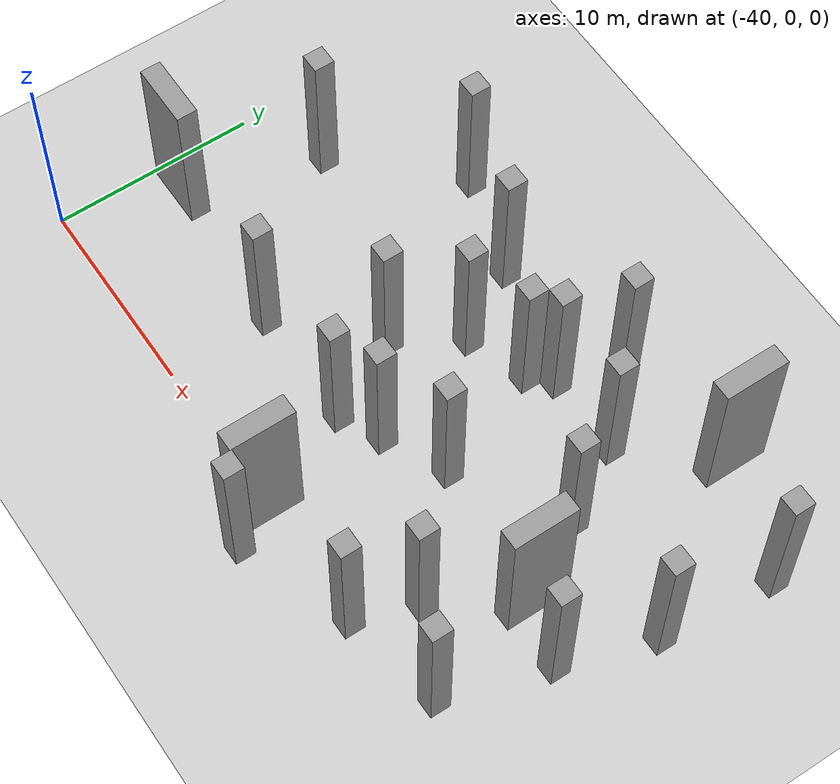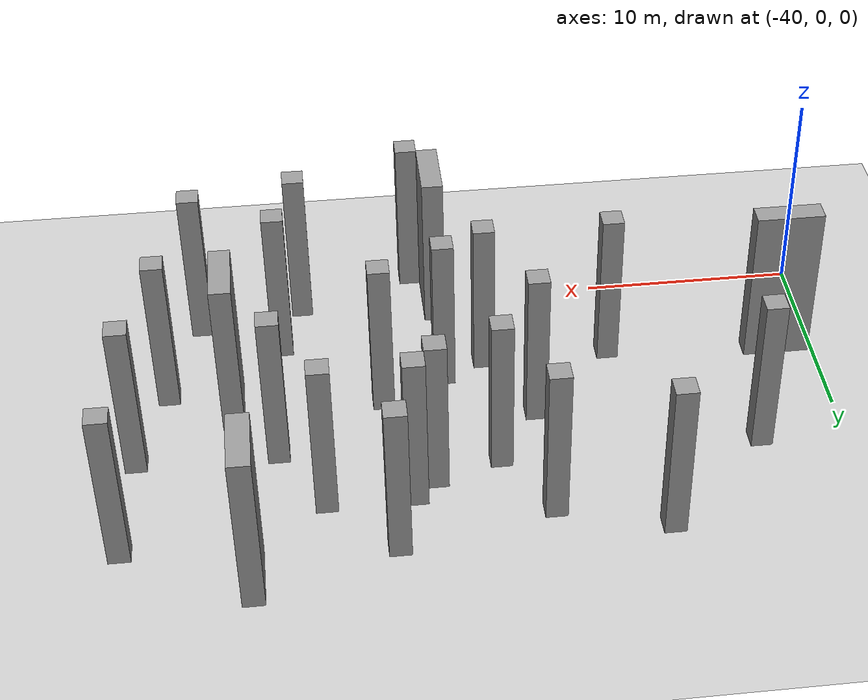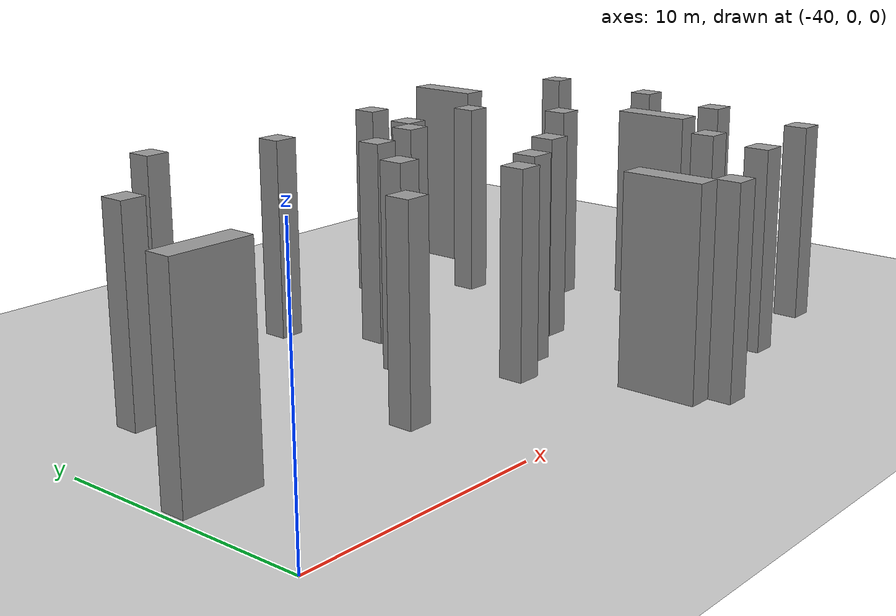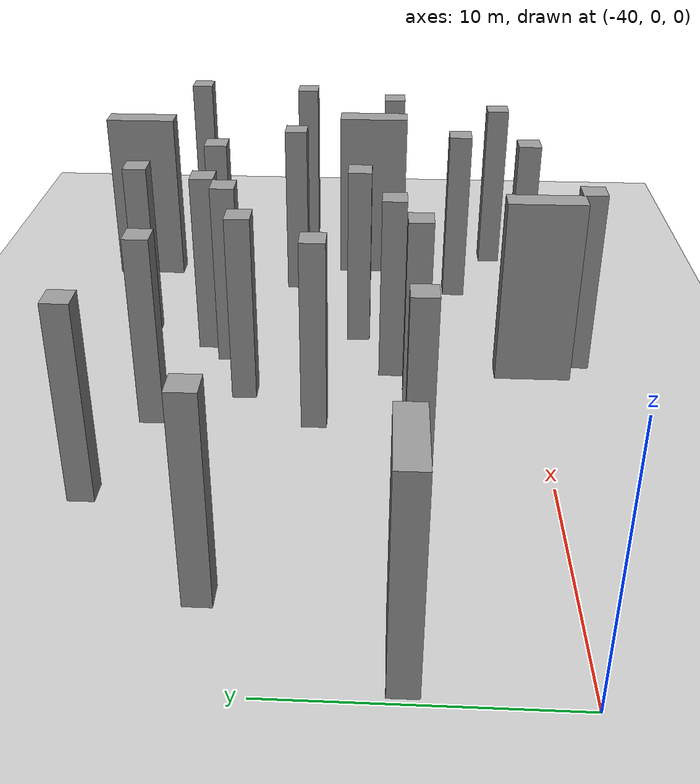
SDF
<sdf version="1.7">
 <world name="default">
  <model name="ground_plane">
   <static>1</static>
   <link name="link">
    <collision name="collision">
     <geometry><plane><normal>0 0 1</normal><size>100 100</size></plane></geometry>
     <surface>
      <contact><collide_bitmask>65535</collide_bitmask></contact>
      <friction><ode><mu>100</mu><mu2>50</mu2></ode></friction>
     </surface>
    </collision>
    <visual name="visual">
     <cast_shadows>0</cast_shadows>
     <geometry><plane><normal>0 0 1</normal><size>100 100</size></plane></geometry>
     <material>
      <script><uri>file://media/materials/scripts/gazebo.material</uri><name>Gazebo/Grey</name></script>
     </material>
    </visual>
   </link>
  </model>
  <model name="unit_box_static_clone_1">
   <link name="link">
    <inertial>
     <mass>1</mass>
     <inertia>
      <ixx>0.166667</ixx>
      <ixy>0</ixy>
      <ixz>0</ixz>
      <iyy>0.166667</iyy>
      <iyz>0</iyz>
      <izz>0.166667</izz>
     </inertia>
    </inertial>
    <visual name="visual">
     <geometry><box><size>1 1 8.00001</size></box></geometry>
     <material>
      <script><name>Gazebo/Grey</name><uri>file://media/materials/scripts/gazebo.material</uri></script>
      <shader type="pixel"/>
     </material>
    </visual>
    <collision name="collision">
     <geometry><box><size>1 1 8.00001</size></box></geometry>
     <surface>
      <friction>
       <ode><mu>1</mu><mu2>1</mu2><fdir1>0 0 0</fdir1><slip1>0</slip1><slip2>0</slip2></ode>
       <torsional>
        <coefficient>1</coefficient>
        <patch_radius>0</patch_radius>
        <surface_radius>0</surface_radius>
        <use_patch_radius>1</use_patch_radius>
        <ode><slip>0</slip></ode>
       </torsional>
      </friction>
      <bounce><restitution_coefficient>0</restitution_coefficient><threshold>1e+06</threshold></bounce>
      <contact>
       <collide_without_contact>0</collide_without_contact>
       <collide_without_contact_bitmask>1</collide_without_contact_bitmask>
       <collide_bitmask>1</collide_bitmask>
       <ode>
        <soft_cfm>0</soft_cfm>
        <soft_erp>0.2</soft_erp>
        <kp>1e+13</kp>
        <kd>1</kd>
        <max_vel>0.01</max_vel>
        <min_depth>0</min_depth>
       </ode>
       <bullet>
        <split_impulse>1</split_impulse>
        <split_impulse_penetration_threshold>-0.01</split_impulse_penetration_threshold>
        <soft_cfm>0</soft_cfm>
        <soft_erp>0.2</soft_erp>
        <kp>1e+13</kp>
        <kd>1</kd>
       </bullet>
      </contact>
     </surface>
    </collision>
   </link>
   <static>1</static>
   <pose>-19 17 4 0 -0 0</pose>
  </model>
  <model name="unit_box_static_clone_3">
   <link name="link">
    <inertial>
     <mass>1</mass>
     <inertia>
      <ixx>0.166667</ixx>
      <ixy>0</ixy>
      <ixz>0</ixz>
      <iyy>0.166667</iyy>
      <iyz>0</iyz>
      <izz>0.166667</izz>
     </inertia>
    </inertial>
    <visual name="visual">
     <geometry><box><size>1 1 8.00001</size></box></geometry>
     <material>
      <script><name>Gazebo/Grey</name><uri>file://media/materials/scripts/gazebo.material</uri></script>
      <shader type="pixel"/>
     </material>
    </visual>
    <collision name="collision">
     <geometry><box><size>1 1 8.00001</size></box></geometry>
     <surface>
      <friction>
       <ode><mu>1</mu><mu2>1</mu2><fdir1>0 0 0</fdir1><slip1>0</slip1><slip2>0</slip2></ode>
       <torsional>
        <coefficient>1</coefficient>
        <patch_radius>0</patch_radius>
        <surface_radius>0</surface_radius>
        <use_patch_radius>1</use_patch_radius>
        <ode><slip>0</slip></ode>
       </torsional>
      </friction>
      <bounce><restitution_coefficient>0</restitution_coefficient><threshold>1e+06</threshold></bounce>
      <contact>
       <collide_without_contact>0</collide_without_contact>
       <collide_without_contact_bitmask>1</collide_without_contact_bitmask>
       <collide_bitmask>1</collide_bitmask>
       <ode>
        <soft_cfm>0</soft_cfm>
        <soft_erp>0.2</soft_erp>
        <kp>1e+13</kp>
        <kd>1</kd>
        <max_vel>0.01</max_vel>
        <min_depth>0</min_depth>
       </ode>
       <bullet>
        <split_impulse>1</split_impulse>
        <split_impulse_penetration_threshold>-0.01</split_impulse_penetration_threshold>
        <soft_cfm>0</soft_cfm>
        <soft_erp>0.2</soft_erp>
        <kp>1e+13</kp>
        <kd>1</kd>
       </bullet>
      </contact>
     </surface>
    </collision>
   </link>
   <static>1</static>
   <pose>-20 14 4 0 -0 0</pose>
  </model>
  <model name="unit_box_static_clone_4">
   <link name="link">
    <inertial>
     <mass>1</mass>
     <inertia>
      <ixx>0.166667</ixx>
      <ixy>0</ixy>
      <ixz>0</ixz>
      <iyy>0.166667</iyy>
      <iyz>0</iyz>
      <izz>0.166667</izz>
     </inertia>
    </inertial>
    <visual name="visual">
     <geometry><box><size>1 1 8.00001</size></box></geometry>
     <material>
      <script><name>Gazebo/Grey</name><uri>file://media/materials/scripts/gazebo.material</uri></script>
      <shader type="pixel"/>
     </material>
    </visual>
    <collision name="collision">
     <geometry><box><size>1 1 8.00001</size></box></geometry>
     <surface>
      <friction>
       <ode><mu>1</mu><mu2>1</mu2><fdir1>0 0 0</fdir1><slip1>0</slip1><slip2>0</slip2></ode>
       <torsional>
        <coefficient>1</coefficient>
        <patch_radius>0</patch_radius>
        <surface_radius>0</surface_radius>
        <use_patch_radius>1</use_patch_radius>
        <ode><slip>0</slip></ode>
       </torsional>
      </friction>
      <bounce><restitution_coefficient>0</restitution_coefficient><threshold>1e+06</threshold></bounce>
      <contact>
       <collide_without_contact>0</collide_without_contact>
       <collide_without_contact_bitmask>1</collide_without_contact_bitmask>
       <collide_bitmask>1</collide_bitmask>
       <ode>
        <soft_cfm>0</soft_cfm>
        <soft_erp>0.2</soft_erp>
        <kp>1e+13</kp>
        <kd>1</kd>
        <max_vel>0.01</max_vel>
        <min_depth>0</min_depth>
       </ode>
       <bullet>
        <split_impulse>1</split_impulse>
        <split_impulse_penetration_threshold>-0.01</split_impulse_penetration_threshold>
        <soft_cfm>0</soft_cfm>
        <soft_erp>0.2</soft_erp>
        <kp>1e+13</kp>
        <kd>1</kd>
       </bullet>
      </contact>
     </surface>
    </collision>
   </link>
   <static>1</static>
   <pose>-14 10.5646 4 0 -0 0</pose>
  </model>
  <model name="unit_box_static_clone_5">
   <link name="link">
    <inertial>
     <mass>1</mass>
     <inertia>
      <ixx>0.166667</ixx>
      <ixy>0</ixy>
      <ixz>0</ixz>
      <iyy>0.166667</iyy>
      <iyz>0</iyz>
      <izz>0.166667</izz>
     </inertia>
    </inertial>
    <visual name="visual">
     <geometry><box><size>1 1 8.00001</size></box></geometry>
     <material>
      <script><name>Gazebo/Grey</name><uri>file://media/materials/scripts/gazebo.material</uri></script>
      <shader type="pixel"/>
     </material>
    </visual>
    <collision name="collision">
     <geometry><box><size>1 1 8.00001</size></box></geometry>
     <surface>
      <friction>
       <ode><mu>1</mu><mu2>1</mu2><fdir1>0 0 0</fdir1><slip1>0</slip1><slip2>0</slip2></ode>
       <torsional>
        <coefficient>1</coefficient>
        <patch_radius>0</patch_radius>
        <surface_radius>0</surface_radius>
        <use_patch_radius>1</use_patch_radius>
        <ode><slip>0</slip></ode>
       </torsional>
      </friction>
      <bounce><restitution_coefficient>0</restitution_coefficient><threshold>1e+06</threshold></bounce>
      <contact>
       <collide_without_contact>0</collide_without_contact>
       <collide_without_contact_bitmask>1</collide_without_contact_bitmask>
       <collide_bitmask>1</collide_bitmask>
       <ode>
        <soft_cfm>0</soft_cfm>
        <soft_erp>0.2</soft_erp>
        <kp>1e+13</kp>
        <kd>1</kd>
        <max_vel>0.01</max_vel>
        <min_depth>0</min_depth>
       </ode>
       <bullet>
        <split_impulse>1</split_impulse>
        <split_impulse_penetration_threshold>-0.01</split_impulse_penetration_threshold>
        <soft_cfm>0</soft_cfm>
        <soft_erp>0.2</soft_erp>
        <kp>1e+13</kp>
        <kd>1</kd>
       </bullet>
      </contact>
     </surface>
    </collision>
   </link>
   <static>1</static>
   <pose>-7.56601 10.4516 4 0 -0 0</pose>
  </model>
  <model name="unit_box_static_clone_7">
   <link name="link">
    <inertial>
     <mass>1</mass>
     <inertia>
      <ixx>0.166667</ixx>
      <ixy>0</ixy>
      <ixz>0</ixz>
      <iyy>0.166667</iyy>
      <iyz>0</iyz>
      <izz>0.166667</izz>
     </inertia>
    </inertial>
    <visual name="visual">
     <geometry><box><size>1 1 8.00001</size></box></geometry>
     <material>
      <script><name>Gazebo/Grey</name><uri>file://media/materials/scripts/gazebo.material</uri></script>
      <shader type="pixel"/>
     </material>
    </visual>
    <collision name="collision">
     <geometry><box><size>1 1 8.00001</size></box></geometry>
     <surface>
      <friction>
       <ode><mu>1</mu><mu2>1</mu2><fdir1>0 0 0</fdir1><slip1>0</slip1><slip2>0</slip2></ode>
       <torsional>
        <coefficient>1</coefficient>
        <patch_radius>0</patch_radius>
        <surface_radius>0</surface_radius>
        <use_patch_radius>1</use_patch_radius>
        <ode><slip>0</slip></ode>
       </torsional>
      </friction>
      <bounce><restitution_coefficient>0</restitution_coefficient><threshold>1e+06</threshold></bounce>
      <contact>
       <collide_without_contact>0</collide_without_contact>
       <collide_without_contact_bitmask>1</collide_without_contact_bitmask>
       <collide_bitmask>1</collide_bitmask>
       <ode>
        <soft_cfm>0</soft_cfm>
        <soft_erp>0.2</soft_erp>
        <kp>1e+13</kp>
        <kd>1</kd>
        <max_vel>0.01</max_vel>
        <min_depth>0</min_depth>
       </ode>
       <bullet>
        <split_impulse>1</split_impulse>
        <split_impulse_penetration_threshold>-0.01</split_impulse_penetration_threshold>
        <soft_cfm>0</soft_cfm>
        <soft_erp>0.2</soft_erp>
        <kp>1e+13</kp>
        <kd>1</kd>
       </bullet>
      </contact>
     </surface>
    </collision>
   </link>
   <static>1</static>
   <pose>-9 6 4 0 -0 0</pose>
  </model>
  <model name="unit_box_static_clone_8">
   <link name="link">
    <inertial>
     <mass>1</mass>
     <inertia>
      <ixx>0.166667</ixx>
      <ixy>0</ixy>
      <ixz>0</ixz>
      <iyy>0.166667</iyy>
      <iyz>0</iyz>
      <izz>0.166667</izz>
     </inertia>
    </inertial>
    <visual name="visual">
     <geometry><box><size>1 1 8.00001</size></box></geometry>
     <material>
      <script><name>Gazebo/Grey</name><uri>file://media/materials/scripts/gazebo.material</uri></script>
      <shader type="pixel"/>
     </material>
    </visual>
    <collision name="collision">
     <geometry><box><size>1 1 8.00001</size></box></geometry>
     <surface>
      <friction>
       <ode><mu>1</mu><mu2>1</mu2><fdir1>0 0 0</fdir1><slip1>0</slip1><slip2>0</slip2></ode>
       <torsional>
        <coefficient>1</coefficient>
        <patch_radius>0</patch_radius>
        <surface_radius>0</surface_radius>
        <use_patch_radius>1</use_patch_radius>
        <ode><slip>0</slip></ode>
       </torsional>
      </friction>
      <bounce><restitution_coefficient>0</restitution_coefficient><threshold>1e+06</threshold></bounce>
      <contact>
       <collide_without_contact>0</collide_without_contact>
       <collide_without_contact_bitmask>1</collide_without_contact_bitmask>
       <collide_bitmask>1</collide_bitmask>
       <ode>
        <soft_cfm>0</soft_cfm>
        <soft_erp>0.2</soft_erp>
        <kp>1e+13</kp>
        <kd>1</kd>
        <max_vel>0.01</max_vel>
        <min_depth>0</min_depth>
       </ode>
       <bullet>
        <split_impulse>1</split_impulse>
        <split_impulse_penetration_threshold>-0.01</split_impulse_penetration_threshold>
        <soft_cfm>0</soft_cfm>
        <soft_erp>0.2</soft_erp>
        <kp>1e+13</kp>
        <kd>1</kd>
       </bullet>
      </contact>
     </surface>
    </collision>
   </link>
   <static>1</static>
   <pose>-19 7.4588 4 0 -0 0</pose>
  </model>
  <model name="unit_box_static_clone_9">
   <link name="link">
    <inertial>
     <mass>1</mass>
     <inertia>
      <ixx>0.166667</ixx>
      <ixy>0</ixy>
      <ixz>0</ixz>
      <iyy>0.166667</iyy>
      <iyz>0</iyz>
      <izz>0.166667</izz>
     </inertia>
    </inertial>
    <visual name="visual">
     <geometry><box><size>1 1 8.00001</size></box></geometry>
     <material>
      <script><name>Gazebo/Grey</name><uri>file://media/materials/scripts/gazebo.material</uri></script>
      <shader type="pixel"/>
     </material>
    </visual>
    <collision name="collision">
     <geometry><box><size>1 1 8.00001</size></box></geometry>
     <surface>
      <friction>
       <ode><mu>1</mu><mu2>1</mu2><fdir1>0 0 0</fdir1><slip1>0</slip1><slip2>0</slip2></ode>
       <torsional>
        <coefficient>1</coefficient>
        <patch_radius>0</patch_radius>
        <surface_radius>0</surface_radius>
        <use_patch_radius>1</use_patch_radius>
        <ode><slip>0</slip></ode>
       </torsional>
      </friction>
      <bounce><restitution_coefficient>0</restitution_coefficient><threshold>1e+06</threshold></bounce>
      <contact>
       <collide_without_contact>0</collide_without_contact>
       <collide_without_contact_bitmask>1</collide_without_contact_bitmask>
       <collide_bitmask>1</collide_bitmask>
       <ode>
        <soft_cfm>0</soft_cfm>
        <soft_erp>0.2</soft_erp>
        <kp>1e+13</kp>
        <kd>1</kd>
        <max_vel>0.01</max_vel>
        <min_depth>0</min_depth>
       </ode>
       <bullet>
        <split_impulse>1</split_impulse>
        <split_impulse_penetration_threshold>-0.01</split_impulse_penetration_threshold>
        <soft_cfm>0</soft_cfm>
        <soft_erp>0.2</soft_erp>
        <kp>1e+13</kp>
        <kd>1</kd>
       </bullet>
      </contact>
     </surface>
    </collision>
   </link>
   <static>1</static>
   <pose>-24 12 4 0 -0 0</pose>
  </model>
  <model name="unit_box_static_clone_10">
   <link name="link">
    <inertial>
     <mass>1</mass>
     <inertia>
      <ixx>0.166667</ixx>
      <ixy>0</ixy>
      <ixz>0</ixz>
      <iyy>0.166667</iyy>
      <iyz>0</iyz>
      <izz>0.166667</izz>
     </inertia>
    </inertial>
    <visual name="visual">
     <geometry><box><size>1 1 8.00001</size></box></geometry>
     <material>
      <script><name>Gazebo/Grey</name><uri>file://media/materials/scripts/gazebo.material</uri></script>
      <shader type="pixel"/>
     </material>
    </visual>
    <collision name="collision">
     <geometry><box><size>1 1 8.00001</size></box></geometry>
     <surface>
      <friction>
       <ode><mu>1</mu><mu2>1</mu2><fdir1>0 0 0</fdir1><slip1>0</slip1><slip2>0</slip2></ode>
       <torsional>
        <coefficient>1</coefficient>
        <patch_radius>0</patch_radius>
        <surface_radius>0</surface_radius>
        <use_patch_radius>1</use_patch_radius>
        <ode><slip>0</slip></ode>
       </torsional>
      </friction>
      <bounce><restitution_coefficient>0</restitution_coefficient><threshold>1e+06</threshold></bounce>
      <contact>
       <collide_without_contact>0</collide_without_contact>
       <collide_without_contact_bitmask>1</collide_without_contact_bitmask>
       <collide_bitmask>1</collide_bitmask>
       <ode>
        <soft_cfm>0</soft_cfm>
        <soft_erp>0.2</soft_erp>
        <kp>1e+13</kp>
        <kd>1</kd>
        <max_vel>0.01</max_vel>
        <min_depth>0</min_depth>
       </ode>
       <bullet>
        <split_impulse>1</split_impulse>
        <split_impulse_penetration_threshold>-0.01</split_impulse_penetration_threshold>
        <soft_cfm>0</soft_cfm>
        <soft_erp>0.2</soft_erp>
        <kp>1e+13</kp>
        <kd>1</kd>
       </bullet>
      </contact>
     </surface>
    </collision>
   </link>
   <static>1</static>
   <pose>-26 15.4497 4 0 -0 0</pose>
  </model>
  <model name="unit_box_static_clone_12">
   <link name="link">
    <inertial>
     <mass>1</mass>
     <inertia>
      <ixx>0.166667</ixx>
      <ixy>0</ixy>
      <ixz>0</ixz>
      <iyy>0.166667</iyy>
      <iyz>0</iyz>
      <izz>0.166667</izz>
     </inertia>
    </inertial>
    <visual name="visual">
     <geometry><box><size>1 1 8.00001</size></box></geometry>
     <material>
      <script><name>Gazebo/Grey</name><uri>file://media/materials/scripts/gazebo.material</uri></script>
      <shader type="pixel"/>
     </material>
    </visual>
    <collision name="collision">
     <geometry><box><size>1 1 8.00001</size></box></geometry>
     <surface>
      <friction>
       <ode><mu>1</mu><mu2>1</mu2><fdir1>0 0 0</fdir1><slip1>0</slip1><slip2>0</slip2></ode>
       <torsional>
        <coefficient>1</coefficient>
        <patch_radius>0</patch_radius>
        <surface_radius>0</surface_radius>
        <use_patch_radius>1</use_patch_radius>
        <ode><slip>0</slip></ode>
       </torsional>
      </friction>
      <bounce><restitution_coefficient>0</restitution_coefficient><threshold>1e+06</threshold></bounce>
      <contact>
       <collide_without_contact>0</collide_without_contact>
       <collide_without_contact_bitmask>1</collide_without_contact_bitmask>
       <collide_bitmask>1</collide_bitmask>
       <ode>
        <soft_cfm>0</soft_cfm>
        <soft_erp>0.2</soft_erp>
        <kp>1e+13</kp>
        <kd>1</kd>
        <max_vel>0.01</max_vel>
        <min_depth>0</min_depth>
       </ode>
       <bullet>
        <split_impulse>1</split_impulse>
        <split_impulse_penetration_threshold>-0.01</split_impulse_penetration_threshold>
        <soft_cfm>0</soft_cfm>
        <soft_erp>0.2</soft_erp>
        <kp>1e+13</kp>
        <kd>1</kd>
       </bullet>
      </contact>
     </surface>
    </collision>
   </link>
   <static>1</static>
   <pose>-14.4203 3 4 0 -0 0</pose>
  </model>
  <model name="unit_box_static_clone_13">
   <link name="link">
    <inertial>
     <mass>1</mass>
     <inertia>
      <ixx>0.166667</ixx>
      <ixy>0</ixy>
      <ixz>0</ixz>
      <iyy>0.166667</iyy>
      <iyz>0</iyz>
      <izz>0.166667</izz>
     </inertia>
    </inertial>
    <visual name="visual">
     <geometry><box><size>1 1 8.00001</size></box></geometry>
     <material>
      <script><name>Gazebo/Grey</name><uri>file://media/materials/scripts/gazebo.material</uri></script>
      <shader type="pixel"/>
     </material>
    </visual>
    <collision name="collision">
     <geometry><box><size>1 1 8.00001</size></box></geometry>
     <surface>
      <friction>
       <ode><mu>1</mu><mu2>1</mu2><fdir1>0 0 0</fdir1><slip1>0</slip1><slip2>0</slip2></ode>
       <torsional>
        <coefficient>1</coefficient>
        <patch_radius>0</patch_radius>
        <surface_radius>0</surface_radius>
        <use_patch_radius>1</use_patch_radius>
        <ode><slip>0</slip></ode>
       </torsional>
      </friction>
      <bounce><restitution_coefficient>0</restitution_coefficient><threshold>1e+06</threshold></bounce>
      <contact>
       <collide_without_contact>0</collide_without_contact>
       <collide_without_contact_bitmask>1</collide_without_contact_bitmask>
       <collide_bitmask>1</collide_bitmask>
       <ode>
        <soft_cfm>0</soft_cfm>
        <soft_erp>0.2</soft_erp>
        <kp>1e+13</kp>
        <kd>1</kd>
        <max_vel>0.01</max_vel>
        <min_depth>0</min_depth>
       </ode>
       <bullet>
        <split_impulse>1</split_impulse>
        <split_impulse_penetration_threshold>-0.01</split_impulse_penetration_threshold>
        <soft_cfm>0</soft_cfm>
        <soft_erp>0.2</soft_erp>
        <kp>1e+13</kp>
        <kd>1</kd>
       </bullet>
      </contact>
     </surface>
    </collision>
   </link>
   <static>1</static>
   <pose>-15.4873 0 4 0 -0 0</pose>
  </model>
  <model name="unit_box_static_clone_17">
   <link name="link">
    <inertial>
     <mass>1</mass>
     <inertia>
      <ixx>0.166667</ixx>
      <ixy>0</ixy>
      <ixz>0</ixz>
      <iyy>0.166667</iyy>
      <iyz>0</iyz>
      <izz>0.166667</izz>
     </inertia>
    </inertial>
    <visual name="visual">
     <geometry><box><size>1 1 8.00001</size></box></geometry>
     <material>
      <script><name>Gazebo/Grey</name><uri>file://media/materials/scripts/gazebo.material</uri></script>
      <shader type="pixel"/>
     </material>
    </visual>
    <collision name="collision">
     <geometry><box><size>1 1 8.00001</size></box></geometry>
     <surface>
      <friction>
       <ode><mu>1</mu><mu2>1</mu2><fdir1>0 0 0</fdir1><slip1>0</slip1><slip2>0</slip2></ode>
       <torsional>
        <coefficient>1</coefficient>
        <patch_radius>0</patch_radius>
        <surface_radius>0</surface_radius>
        <use_patch_radius>1</use_patch_radius>
        <ode><slip>0</slip></ode>
       </torsional>
      </friction>
      <bounce><restitution_coefficient>0</restitution_coefficient><threshold>1e+06</threshold></bounce>
      <contact>
       <collide_without_contact>0</collide_without_contact>
       <collide_without_contact_bitmask>1</collide_without_contact_bitmask>
       <collide_bitmask>1</collide_bitmask>
       <ode>
        <soft_cfm>0</soft_cfm>
        <soft_erp>0.2</soft_erp>
        <kp>1e+13</kp>
        <kd>1</kd>
        <max_vel>0.01</max_vel>
        <min_depth>0</min_depth>
       </ode>
       <bullet>
        <split_impulse>1</split_impulse>
        <split_impulse_penetration_threshold>-0.01</split_impulse_penetration_threshold>
        <soft_cfm>0</soft_cfm>
        <soft_erp>0.2</soft_erp>
        <kp>1e+13</kp>
        <kd>1</kd>
       </bullet>
      </contact>
     </surface>
    </collision>
   </link>
   <static>1</static>
   <pose>-10.5542 1 4 0 -0 0</pose>
  </model>
  <model name="unit_box_static_clone_18">
   <link name="link">
    <inertial>
     <mass>1</mass>
     <inertia>
      <ixx>0.166667</ixx>
      <ixy>0</ixy>
      <ixz>0</ixz>
      <iyy>0.166667</iyy>
      <iyz>0</iyz>
      <izz>0.166667</izz>
     </inertia>
    </inertial>
    <visual name="visual">
     <geometry><box><size>1 1 8.00001</size></box></geometry>
     <material>
      <script><name>Gazebo/Grey</name><uri>file://media/materials/scripts/gazebo.material</uri></script>
      <shader type="pixel"/>
     </material>
    </visual>
    <collision name="collision">
     <geometry><box><size>1 1 8.00001</size></box></geometry>
     <surface>
      <friction>
       <ode><mu>1</mu><mu2>1</mu2><fdir1>0 0 0</fdir1><slip1>0</slip1><slip2>0</slip2></ode>
       <torsional>
        <coefficient>1</coefficient>
        <patch_radius>0</patch_radius>
        <surface_radius>0</surface_radius>
        <use_patch_radius>1</use_patch_radius>
        <ode><slip>0</slip></ode>
       </torsional>
      </friction>
      <bounce><restitution_coefficient>0</restitution_coefficient><threshold>1e+06</threshold></bounce>
      <contact>
       <collide_without_contact>0</collide_without_contact>
       <collide_without_contact_bitmask>1</collide_without_contact_bitmask>
       <collide_bitmask>1</collide_bitmask>
       <ode>
        <soft_cfm>0</soft_cfm>
        <soft_erp>0.2</soft_erp>
        <kp>1e+13</kp>
        <kd>1</kd>
        <max_vel>0.01</max_vel>
        <min_depth>0</min_depth>
       </ode>
       <bullet>
        <split_impulse>1</split_impulse>
        <split_impulse_penetration_threshold>-0.01</split_impulse_penetration_threshold>
        <soft_cfm>0</soft_cfm>
        <soft_erp>0.2</soft_erp>
        <kp>1e+13</kp>
        <kd>1</kd>
       </bullet>
      </contact>
     </surface>
    </collision>
   </link>
   <static>1</static>
   <pose>-7 16 4 0 -0 0</pose>
  </model>
  <model name="unit_box_static_clone_66">
   <link name="link">
    <inertial>
     <mass>1</mass>
     <inertia>
      <ixx>0.166667</ixx>
      <ixy>0</ixy>
      <ixz>0</ixz>
      <iyy>0.166667</iyy>
      <iyz>0</iyz>
      <izz>0.166667</izz>
     </inertia>
    </inertial>
    <visual name="visual">
     <geometry><box><size>1 1 8.00001</size></box></geometry>
     <material>
      <script><name>Gazebo/Grey</name><uri>file://media/materials/scripts/gazebo.material</uri></script>
      <shader type="pixel"/>
     </material>
    </visual>
    <collision name="collision">
     <geometry><box><size>1 1 8.00001</size></box></geometry>
     <surface>
      <friction>
       <ode><mu>1</mu><mu2>1</mu2><fdir1>0 0 0</fdir1><slip1>0</slip1><slip2>0</slip2></ode>
       <torsional>
        <coefficient>1</coefficient>
        <patch_radius>0</patch_radius>
        <surface_radius>0</surface_radius>
        <use_patch_radius>1</use_patch_radius>
        <ode><slip>0</slip></ode>
       </torsional>
      </friction>
      <bounce><restitution_coefficient>0</restitution_coefficient><threshold>1e+06</threshold></bounce>
      <contact>
       <collide_without_contact>0</collide_without_contact>
       <collide_without_contact_bitmask>1</collide_without_contact_bitmask>
       <collide_bitmask>1</collide_bitmask>
       <ode>
        <soft_cfm>0</soft_cfm>
        <soft_erp>0.2</soft_erp>
        <kp>1e+13</kp>
        <kd>1</kd>
        <max_vel>0.01</max_vel>
        <min_depth>0</min_depth>
       </ode>
       <bullet>
        <split_impulse>1</split_impulse>
        <split_impulse_penetration_threshold>-0.01</split_impulse_penetration_threshold>
        <soft_cfm>0</soft_cfm>
        <soft_erp>0.2</soft_erp>
        <kp>1e+13</kp>
        <kd>1</kd>
       </bullet>
      </contact>
     </surface>
    </collision>
   </link>
   <static>1</static>
   <pose>-22 6 4 0 -0 0</pose>
  </model>
  <model name="unit_box_static_clone_67">
   <link name="link">
    <inertial>
     <mass>1</mass>
     <inertia>
      <ixx>0.166667</ixx>
      <ixy>0</ixy>
      <ixz>0</ixz>
      <iyy>0.166667</iyy>
      <iyz>0</iyz>
      <izz>0.166667</izz>
     </inertia>
    </inertial>
    <visual name="visual">
     <geometry><box><size>1 1 8.00001</size></box></geometry>
     <material>
      <script><name>Gazebo/Grey</name><uri>file://media/materials/scripts/gazebo.material</uri></script>
      <shader type="pixel"/>
     </material>
    </visual>
    <collision name="collision">
     <geometry><box><size>1 1 8.00001</size></box></geometry>
     <surface>
      <friction>
       <ode><mu>1</mu><mu2>1</mu2><fdir1>0 0 0</fdir1><slip1>0</slip1><slip2>0</slip2></ode>
       <torsional>
        <coefficient>1</coefficient>
        <patch_radius>0</patch_radius>
        <surface_radius>0</surface_radius>
        <use_patch_radius>1</use_patch_radius>
        <ode><slip>0</slip></ode>
       </torsional>
      </friction>
      <bounce><restitution_coefficient>0</restitution_coefficient><threshold>1e+06</threshold></bounce>
      <contact>
       <collide_without_contact>0</collide_without_contact>
       <collide_without_contact_bitmask>1</collide_without_contact_bitmask>
       <collide_bitmask>1</collide_bitmask>
       <ode>
        <soft_cfm>0</soft_cfm>
        <soft_erp>0.2</soft_erp>
        <kp>1e+13</kp>
        <kd>1</kd>
        <max_vel>0.01</max_vel>
        <min_depth>0</min_depth>
       </ode>
       <bullet>
        <split_impulse>1</split_impulse>
        <split_impulse_penetration_threshold>-0.01</split_impulse_penetration_threshold>
        <soft_cfm>0</soft_cfm>
        <soft_erp>0.2</soft_erp>
        <kp>1e+13</kp>
        <kd>1</kd>
       </bullet>
      </contact>
     </surface>
    </collision>
   </link>
   <static>1</static>
   <pose>-24 5 4 0 -0 0</pose>
  </model>
  <model name="unit_box_static_clone_68">
   <link name="link">
    <inertial>
     <mass>1</mass>
     <inertia>
      <ixx>0.166667</ixx>
      <ixy>0</ixy>
      <ixz>0</ixz>
      <iyy>0.166667</iyy>
      <iyz>0</iyz>
      <izz>0.166667</izz>
     </inertia>
    </inertial>
    <visual name="visual">
     <geometry><box><size>1 1 8.00001</size></box></geometry>
     <material>
      <script><name>Gazebo/Grey</name><uri>file://media/materials/scripts/gazebo.material</uri></script>
      <shader type="pixel"/>
     </material>
    </visual>
    <collision name="collision">
     <geometry><box><size>1 1 8.00001</size></box></geometry>
     <surface>
      <friction>
       <ode><mu>1</mu><mu2>1</mu2><fdir1>0 0 0</fdir1><slip1>0</slip1><slip2>0</slip2></ode>
       <torsional>
        <coefficient>1</coefficient>
        <patch_radius>0</patch_radius>
        <surface_radius>0</surface_radius>
        <use_patch_radius>1</use_patch_radius>
        <ode><slip>0</slip></ode>
       </torsional>
      </friction>
      <bounce><restitution_coefficient>0</restitution_coefficient><threshold>1e+06</threshold></bounce>
      <contact>
       <collide_without_contact>0</collide_without_contact>
       <collide_without_contact_bitmask>1</collide_without_contact_bitmask>
       <collide_bitmask>1</collide_bitmask>
       <ode>
        <soft_cfm>0</soft_cfm>
        <soft_erp>0.2</soft_erp>
        <kp>1e+13</kp>
        <kd>1</kd>
        <max_vel>0.01</max_vel>
        <min_depth>0</min_depth>
       </ode>
       <bullet>
        <split_impulse>1</split_impulse>
        <split_impulse_penetration_threshold>-0.01</split_impulse_penetration_threshold>
        <soft_cfm>0</soft_cfm>
        <soft_erp>0.2</soft_erp>
        <kp>1e+13</kp>
        <kd>1</kd>
       </bullet>
      </contact>
     </surface>
    </collision>
   </link>
   <static>1</static>
   <pose>-21 -2 4 0 -0 0</pose>
  </model>
  <model name="unit_box_static_clone_37_clone_1">
   <link name="link">
    <inertial>
     <mass>1</mass>
     <inertia>
      <ixx>0.166667</ixx>
      <ixy>0</ixy>
      <ixz>0</ixz>
      <iyy>0.166667</iyy>
      <iyz>0</iyz>
      <izz>0.166667</izz>
     </inertia>
    </inertial>
    <visual name="visual">
     <geometry><box><size>1 3.16921 8.00001</size></box></geometry>
     <material>
      <script><name>Gazebo/Grey</name><uri>file://media/materials/scripts/gazebo.material</uri></script>
      <shader type="pixel"/>
     </material>
    </visual>
    <collision name="collision">
     <geometry><box><size>1 3.16921 8.00001</size></box></geometry>
     <surface>
      <friction>
       <ode><mu>1</mu><mu2>1</mu2><fdir1>0 0 0</fdir1><slip1>0</slip1><slip2>0</slip2></ode>
       <torsional>
        <coefficient>1</coefficient>
        <patch_radius>0</patch_radius>
        <surface_radius>0</surface_radius>
        <use_patch_radius>1</use_patch_radius>
        <ode><slip>0</slip></ode>
       </torsional>
      </friction>
      <bounce><restitution_coefficient>0</restitution_coefficient><threshold>1e+06</threshold></bounce>
      <contact>
       <collide_without_contact>0</collide_without_contact>
       <collide_without_contact_bitmask>1</collide_without_contact_bitmask>
       <collide_bitmask>1</collide_bitmask>
       <ode>
        <soft_cfm>0</soft_cfm>
        <soft_erp>0.2</soft_erp>
        <kp>1e+13</kp>
        <kd>1</kd>
        <max_vel>0.01</max_vel>
        <min_depth>0</min_depth>
       </ode>
       <bullet>
        <split_impulse>1</split_impulse>
        <split_impulse_penetration_threshold>-0.01</split_impulse_penetration_threshold>
        <soft_cfm>0</soft_cfm>
        <soft_erp>0.2</soft_erp>
        <kp>1e+13</kp>
        <kd>1</kd>
       </bullet>
      </contact>
     </surface>
    </collision>
   </link>
   <static>1</static>
   <pose>-12 7 4 0 -0 0</pose>
  </model>
  <model name="unit_box_static_clone_37_clone_3">
   <link name="link">
    <inertial>
     <mass>1</mass>
     <inertia>
      <ixx>0.166667</ixx>
      <ixy>0</ixy>
      <ixz>0</ixz>
      <iyy>0.166667</iyy>
      <iyz>0</iyz>
      <izz>0.166667</izz>
     </inertia>
    </inertial>
    <visual name="visual">
     <geometry><box><size>1 3.16921 8.00001</size></box></geometry>
     <material>
      <script><name>Gazebo/Grey</name><uri>file://media/materials/scripts/gazebo.material</uri></script>
      <shader type="pixel"/>
     </material>
    </visual>
    <collision name="collision">
     <geometry><box><size>1 3.16921 8.00001</size></box></geometry>
     <surface>
      <friction>
       <ode><mu>1</mu><mu2>1</mu2><fdir1>0 0 0</fdir1><slip1>0</slip1><slip2>0</slip2></ode>
       <torsional>
        <coefficient>1</coefficient>
        <patch_radius>0</patch_radius>
        <surface_radius>0</surface_radius>
        <use_patch_radius>1</use_patch_radius>
        <ode><slip>0</slip></ode>
       </torsional>
      </friction>
      <bounce><restitution_coefficient>0</restitution_coefficient><threshold>1e+06</threshold></bounce>
      <contact>
       <collide_without_contact>0</collide_without_contact>
       <collide_without_contact_bitmask>1</collide_without_contact_bitmask>
       <collide_bitmask>1</collide_bitmask>
       <ode>
        <soft_cfm>0</soft_cfm>
        <soft_erp>0.2</soft_erp>
        <kp>1e+13</kp>
        <kd>1</kd>
        <max_vel>0.01</max_vel>
        <min_depth>0</min_depth>
       </ode>
       <bullet>
        <split_impulse>1</split_impulse>
        <split_impulse_penetration_threshold>-0.01</split_impulse_penetration_threshold>
        <soft_cfm>0</soft_cfm>
        <soft_erp>0.2</soft_erp>
        <kp>1e+13</kp>
        <kd>1</kd>
       </bullet>
      </contact>
     </surface>
    </collision>
   </link>
   <static>1</static>
   <pose>-12.668 18.0845 4 0 -0 0</pose>
  </model>
  <model name="unit_box_static_clone_37_clone_5">
   <link name="link">
    <inertial>
     <mass>1</mass>
     <inertia>
      <ixx>0.166667</ixx>
      <ixy>0</ixy>
      <ixz>0</ixz>
      <iyy>0.166667</iyy>
      <iyz>0</iyz>
      <izz>0.166667</izz>
     </inertia>
    </inertial>
    <visual name="visual">
     <geometry><box><size>1 3.16921 8.00001</size></box></geometry>
     <material>
      <script><name>Gazebo/Grey</name><uri>file://media/materials/scripts/gazebo.material</uri></script>
      <shader type="pixel"/>
     </material>
    </visual>
    <collision name="collision">
     <geometry><box><size>1 3.16921 8.00001</size></box></geometry>
     <surface>
      <friction>
       <ode><mu>1</mu><mu2>1</mu2><fdir1>0 0 0</fdir1><slip1>0</slip1><slip2>0</slip2></ode>
       <torsional>
        <coefficient>1</coefficient>
        <patch_radius>0</patch_radius>
        <surface_radius>0</surface_radius>
        <use_patch_radius>1</use_patch_radius>
        <ode><slip>0</slip></ode>
       </torsional>
      </friction>
      <bounce><restitution_coefficient>0</restitution_coefficient><threshold>1e+06</threshold></bounce>
      <contact>
       <collide_without_contact>0</collide_without_contact>
       <collide_without_contact_bitmask>1</collide_without_contact_bitmask>
       <collide_bitmask>1</collide_bitmask>
       <ode>
        <soft_cfm>0</soft_cfm>
        <soft_erp>0.2</soft_erp>
        <kp>1e+13</kp>
        <kd>1</kd>
        <max_vel>0.01</max_vel>
        <min_depth>0</min_depth>
       </ode>
       <bullet>
        <split_impulse>1</split_impulse>
        <split_impulse_penetration_threshold>-0.01</split_impulse_penetration_threshold>
        <soft_cfm>0</soft_cfm>
        <soft_erp>0.2</soft_erp>
        <kp>1e+13</kp>
        <kd>1</kd>
       </bullet>
      </contact>
     </surface>
    </collision>
   </link>
   <static>1</static>
   <pose>-22 0 4 0 -0 0</pose>
  </model>
  <model name="unit_box_static_clone_35_clone_31">
   <link name="link">
    <inertial>
     <mass>1</mass>
     <inertia>
      <ixx>0.166667</ixx>
      <ixy>0</ixy>
      <ixz>0</ixz>
      <iyy>0.166667</iyy>
      <iyz>0</iyz>
      <izz>0.166667</izz>
     </inertia>
    </inertial>
    <visual name="visual">
     <geometry><box><size>1 1 8.00001</size></box></geometry>
     <material>
      <script><name>Gazebo/Grey</name><uri>file://media/materials/scripts/gazebo.material</uri></script>
      <shader type="pixel"/>
     </material>
    </visual>
    <collision name="collision">
     <geometry><box><size>1 1 8.00001</size></box></geometry>
     <surface>
      <friction>
       <ode><mu>1</mu><mu2>1</mu2><fdir1>0 0 0</fdir1><slip1>0</slip1><slip2>0</slip2></ode>
       <torsional>
        <coefficient>1</coefficient>
        <patch_radius>0</patch_radius>
        <surface_radius>0</surface_radius>
        <use_patch_radius>1</use_patch_radius>
        <ode><slip>0</slip></ode>
       </torsional>
      </friction>
      <bounce><restitution_coefficient>0</restitution_coefficient><threshold>1e+06</threshold></bounce>
      <contact>
       <collide_without_contact>0</collide_without_contact>
       <collide_without_contact_bitmask>1</collide_without_contact_bitmask>
       <collide_bitmask>1</collide_bitmask>
       <ode>
        <soft_cfm>0</soft_cfm>
        <soft_erp>0.2</soft_erp>
        <kp>1e+13</kp>
        <kd>1</kd>
        <max_vel>0.01</max_vel>
        <min_depth>0</min_depth>
       </ode>
       <bullet>
        <split_impulse>1</split_impulse>
        <split_impulse_penetration_threshold>-0.01</split_impulse_penetration_threshold>
        <soft_cfm>0</soft_cfm>
        <soft_erp>0.2</soft_erp>
        <kp>1e+13</kp>
        <kd>1</kd>
       </bullet>
      </contact>
     </surface>
    </collision>
   </link>
   <static>1</static>
   <pose>-30 5 4 0 -0 0</pose>
  </model>
  <model name="unit_box_static_clone_35_clone_32">
   <link name="link">
    <inertial>
     <mass>1</mass>
     <inertia>
      <ixx>0.166667</ixx>
      <ixy>0</ixy>
      <ixz>0</ixz>
      <iyy>0.166667</iyy>
      <iyz>0</iyz>
      <izz>0.166667</izz>
     </inertia>
    </inertial>
    <visual name="visual">
     <geometry><box><size>1 1 8.00001</size></box></geometry>
     <material>
      <script><name>Gazebo/Grey</name><uri>file://media/materials/scripts/gazebo.material</uri></script>
      <shader type="pixel"/>
     </material>
    </visual>
    <collision name="collision">
     <geometry><box><size>1 1 8.00001</size></box></geometry>
     <surface>
      <friction>
       <ode><mu>1</mu><mu2>1</mu2><fdir1>0 0 0</fdir1><slip1>0</slip1><slip2>0</slip2></ode>
       <torsional>
        <coefficient>1</coefficient>
        <patch_radius>0</patch_radius>
        <surface_radius>0</surface_radius>
        <use_patch_radius>1</use_patch_radius>
        <ode><slip>0</slip></ode>
       </torsional>
      </friction>
      <bounce><restitution_coefficient>0</restitution_coefficient><threshold>1e+06</threshold></bounce>
      <contact>
       <collide_without_contact>0</collide_without_contact>
       <collide_without_contact_bitmask>1</collide_without_contact_bitmask>
       <collide_bitmask>1</collide_bitmask>
       <ode>
        <soft_cfm>0</soft_cfm>
        <soft_erp>0.2</soft_erp>
        <kp>1e+13</kp>
        <kd>1</kd>
        <max_vel>0.01</max_vel>
        <min_depth>0</min_depth>
       </ode>
       <bullet>
        <split_impulse>1</split_impulse>
        <split_impulse_penetration_threshold>-0.01</split_impulse_penetration_threshold>
        <soft_cfm>0</soft_cfm>
        <soft_erp>0.2</soft_erp>
        <kp>1e+13</kp>
        <kd>1</kd>
       </bullet>
      </contact>
     </surface>
    </collision>
   </link>
   <static>1</static>
   <pose>-31 17 4 0 -0 0</pose>
  </model>
  <model name="unit_box_static_clone_35_clone_33">
   <link name="link">
    <inertial>
     <mass>1</mass>
     <inertia>
      <ixx>0.166667</ixx>
      <ixy>0</ixy>
      <ixz>0</ixz>
      <iyy>0.166667</iyy>
      <iyz>0</iyz>
      <izz>0.166667</izz>
     </inertia>
    </inertial>
    <visual name="visual">
     <geometry><box><size>1 1 8.00001</size></box></geometry>
     <material>
      <script><name>Gazebo/Grey</name><uri>file://media/materials/scripts/gazebo.material</uri></script>
      <shader type="pixel"/>
     </material>
    </visual>
    <collision name="collision">
     <geometry><box><size>1 1 8.00001</size></box></geometry>
     <surface>
      <friction>
       <ode><mu>1</mu><mu2>1</mu2><fdir1>0 0 0</fdir1><slip1>0</slip1><slip2>0</slip2></ode>
       <torsional>
        <coefficient>1</coefficient>
        <patch_radius>0</patch_radius>
        <surface_radius>0</surface_radius>
        <use_patch_radius>1</use_patch_radius>
        <ode><slip>0</slip></ode>
       </torsional>
      </friction>
      <bounce><restitution_coefficient>0</restitution_coefficient><threshold>1e+06</threshold></bounce>
      <contact>
       <collide_without_contact>0</collide_without_contact>
       <collide_without_contact_bitmask>1</collide_without_contact_bitmask>
       <collide_bitmask>1</collide_bitmask>
       <ode>
        <soft_cfm>0</soft_cfm>
        <soft_erp>0.2</soft_erp>
        <kp>1e+13</kp>
        <kd>1</kd>
        <max_vel>0.01</max_vel>
        <min_depth>0</min_depth>
       </ode>
       <bullet>
        <split_impulse>1</split_impulse>
        <split_impulse_penetration_threshold>-0.01</split_impulse_penetration_threshold>
        <soft_cfm>0</soft_cfm>
        <soft_erp>0.2</soft_erp>
        <kp>1e+13</kp>
        <kd>1</kd>
       </bullet>
      </contact>
     </surface>
    </collision>
   </link>
   <static>1</static>
   <pose>-36 12 4 0 -0 0</pose>
  </model>
  <model name="unit_box_static_clone_35_clone_34">
   <link name="link">
    <inertial>
     <mass>1</mass>
     <inertia>
      <ixx>0.166667</ixx>
      <ixy>0</ixy>
      <ixz>0</ixz>
      <iyy>0.166667</iyy>
      <iyz>0</iyz>
      <izz>0.166667</izz>
     </inertia>
    </inertial>
    <visual name="visual">
     <geometry><box><size>1 1 8.00001</size></box></geometry>
     <material>
      <script><name>Gazebo/Grey</name><uri>file://media/materials/scripts/gazebo.material</uri></script>
      <shader type="pixel"/>
     </material>
    </visual>
    <collision name="collision">
     <geometry><box><size>1 1 8.00001</size></box></geometry>
     <surface>
      <friction>
       <ode><mu>1</mu><mu2>1</mu2><fdir1>0 0 0</fdir1><slip1>0</slip1><slip2>0</slip2></ode>
       <torsional>
        <coefficient>1</coefficient>
        <patch_radius>0</patch_radius>
        <surface_radius>0</surface_radius>
        <use_patch_radius>1</use_patch_radius>
        <ode><slip>0</slip></ode>
       </torsional>
      </friction>
      <bounce><restitution_coefficient>0</restitution_coefficient><threshold>1e+06</threshold></bounce>
      <contact>
       <collide_without_contact>0</collide_without_contact>
       <collide_without_contact_bitmask>1</collide_without_contact_bitmask>
       <collide_bitmask>1</collide_bitmask>
       <ode>
        <soft_cfm>0</soft_cfm>
        <soft_erp>0.2</soft_erp>
        <kp>1e+13</kp>
        <kd>1</kd>
        <max_vel>0.01</max_vel>
        <min_depth>0</min_depth>
       </ode>
       <bullet>
        <split_impulse>1</split_impulse>
        <split_impulse_penetration_threshold>-0.01</split_impulse_penetration_threshold>
        <soft_cfm>0</soft_cfm>
        <soft_erp>0.2</soft_erp>
        <kp>1e+13</kp>
        <kd>1</kd>
       </bullet>
      </contact>
     </surface>
    </collision>
   </link>
   <static>1</static>
   <pose>-16 14 4 0 -0 0</pose>
  </model>
  <model name="unit_box_static_clone_35_clone_35">
   <link name="link">
    <inertial>
     <mass>1</mass>
     <inertia>
      <ixx>0.166667</ixx>
      <ixy>0</ixy>
      <ixz>0</ixz>
      <iyy>0.166667</iyy>
      <iyz>0</iyz>
      <izz>0.166667</izz>
     </inertia>
    </inertial>
    <visual name="visual">
     <geometry><box><size>1 1 8.00001</size></box></geometry>
     <material>
      <script><name>Gazebo/Grey</name><uri>file://media/materials/scripts/gazebo.material</uri></script>
      <shader type="pixel"/>
     </material>
    </visual>
    <collision name="collision">
     <geometry><box><size>1 1 8.00001</size></box></geometry>
     <surface>
      <friction>
       <ode><mu>1</mu><mu2>1</mu2><fdir1>0 0 0</fdir1><slip1>0</slip1><slip2>0</slip2></ode>
       <torsional>
        <coefficient>1</coefficient>
        <patch_radius>0</patch_radius>
        <surface_radius>0</surface_radius>
        <use_patch_radius>1</use_patch_radius>
        <ode><slip>0</slip></ode>
       </torsional>
      </friction>
      <bounce><restitution_coefficient>0</restitution_coefficient><threshold>1e+06</threshold></bounce>
      <contact>
       <collide_without_contact>0</collide_without_contact>
       <collide_without_contact_bitmask>1</collide_without_contact_bitmask>
       <collide_bitmask>1</collide_bitmask>
       <ode>
        <soft_cfm>0</soft_cfm>
        <soft_erp>0.2</soft_erp>
        <kp>1e+13</kp>
        <kd>1</kd>
        <max_vel>0.01</max_vel>
        <min_depth>0</min_depth>
       </ode>
       <bullet>
        <split_impulse>1</split_impulse>
        <split_impulse_penetration_threshold>-0.01</split_impulse_penetration_threshold>
        <soft_cfm>0</soft_cfm>
        <soft_erp>0.2</soft_erp>
        <kp>1e+13</kp>
        <kd>1</kd>
       </bullet>
      </contact>
     </surface>
    </collision>
   </link>
   <static>1</static>
   <pose>-21 13 4 0 -0 0</pose>
  </model>
  <model name="unit_box_static_clone_35_clone_37">
   <link name="link">
    <inertial>
     <mass>1</mass>
     <inertia>
      <ixx>0.166667</ixx>
      <ixy>0</ixy>
      <ixz>0</ixz>
      <iyy>0.166667</iyy>
      <iyz>0</iyz>
      <izz>0.166667</izz>
     </inertia>
    </inertial>
    <visual name="visual">
     <geometry><box><size>1 1 8.00001</size></box></geometry>
     <material>
      <script><name>Gazebo/Grey</name><uri>file://media/materials/scripts/gazebo.material</uri></script>
      <shader type="pixel"/>
     </material>
    </visual>
    <collision name="collision">
     <geometry><box><size>1 1 8.00001</size></box></geometry>
     <surface>
      <friction>
       <ode><mu>1</mu><mu2>1</mu2><fdir1>0 0 0</fdir1><slip1>0</slip1><slip2>0</slip2></ode>
       <torsional>
        <coefficient>1</coefficient>
        <patch_radius>0</patch_radius>
        <surface_radius>0</surface_radius>
        <use_patch_radius>1</use_patch_radius>
        <ode><slip>0</slip></ode>
       </torsional>
      </friction>
      <bounce><restitution_coefficient>0</restitution_coefficient><threshold>1e+06</threshold></bounce>
      <contact>
       <collide_without_contact>0</collide_without_contact>
       <collide_without_contact_bitmask>1</collide_without_contact_bitmask>
       <collide_bitmask>1</collide_bitmask>
       <ode>
        <soft_cfm>0</soft_cfm>
        <soft_erp>0.2</soft_erp>
        <kp>1e+13</kp>
        <kd>1</kd>
        <max_vel>0.01</max_vel>
        <min_depth>0</min_depth>
       </ode>
       <bullet>
        <split_impulse>1</split_impulse>
        <split_impulse_penetration_threshold>-0.01</split_impulse_penetration_threshold>
        <soft_cfm>0</soft_cfm>
        <soft_erp>0.2</soft_erp>
        <kp>1e+13</kp>
        <kd>1</kd>
       </bullet>
      </contact>
     </surface>
    </collision>
   </link>
   <static>1</static>
   <pose>-26 9 4 0 -0 0</pose>
  </model>
  <model name="unit_box_static_clone_37_clone_4_clone_clone">
   <link name="link">
    <inertial>
     <mass>1</mass>
     <inertia>
      <ixx>0.166667</ixx>
      <ixy>0</ixy>
      <ixz>0</ixz>
      <iyy>0.166667</iyy>
      <iyz>0</iyz>
      <izz>0.166667</izz>
     </inertia>
    </inertial>
    <visual name="visual">
     <geometry><box><size>1 3.16921 8.00001</size></box></geometry>
     <material>
      <script><name>Gazebo/Grey</name><uri>file://media/materials/scripts/gazebo.material</uri></script>
      <shader type="pixel"/>
     </material>
    </visual>
    <collision name="collision">
     <geometry><box><size>1 3.16921 8.00001</size></box></geometry>
     <surface>
      <friction>
       <ode><mu>1</mu><mu2>1</mu2><fdir1>0 0 0</fdir1><slip1>0</slip1><slip2>0</slip2></ode>
       <torsional>
        <coefficient>1</coefficient>
        <patch_radius>0</patch_radius>
        <surface_radius>0</surface_radius>
        <use_patch_radius>1</use_patch_radius>
        <ode><slip>0</slip></ode>
       </torsional>
      </friction>
      <bounce><restitution_coefficient>0</restitution_coefficient><threshold>1e+06</threshold></bounce>
      <contact>
       <collide_without_contact>0</collide_without_contact>
       <collide_without_contact_bitmask>1</collide_without_contact_bitmask>
       <collide_bitmask>1</collide_bitmask>
       <ode>
        <soft_cfm>0</soft_cfm>
        <soft_erp>0.2</soft_erp>
        <kp>1e+13</kp>
        <kd>1</kd>
        <max_vel>0.01</max_vel>
        <min_depth>0</min_depth>
       </ode>
       <bullet>
        <split_impulse>1</split_impulse>
        <split_impulse_penetration_threshold>-0.01</split_impulse_penetration_threshold>
        <soft_cfm>0</soft_cfm>
        <soft_erp>0.2</soft_erp>
        <kp>1e+13</kp>
        <kd>1</kd>
       </bullet>
      </contact>
     </surface>
    </collision>
   </link>
   <static>1</static>
   <pose>-38.2081 5.56243 4 0 -0 1.57</pose>
  </model>
 </world>
</sdf>
